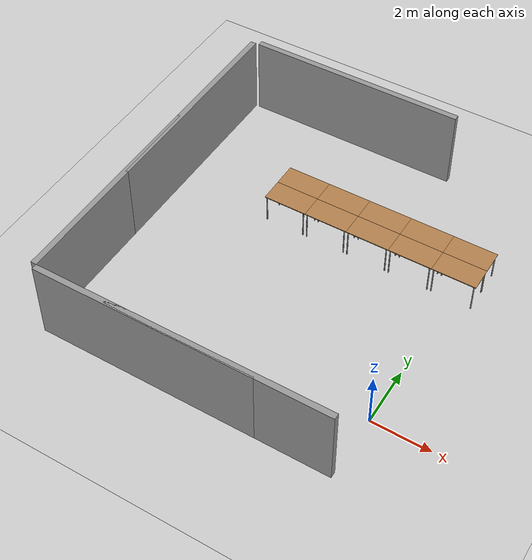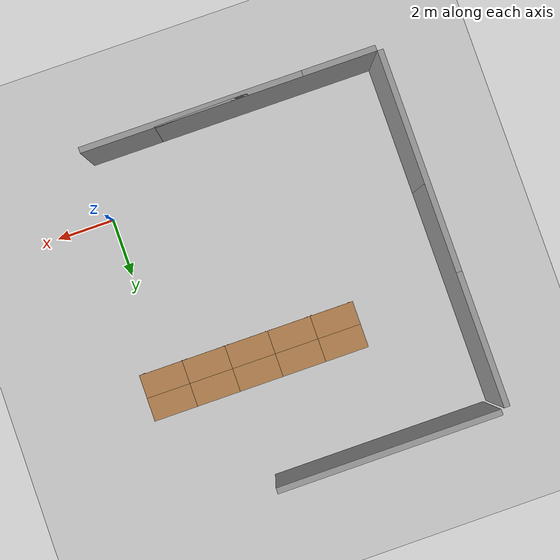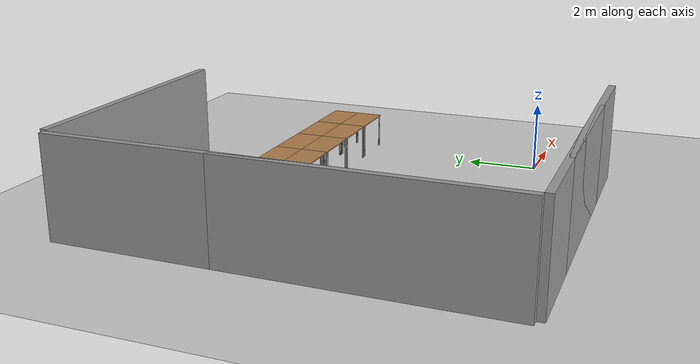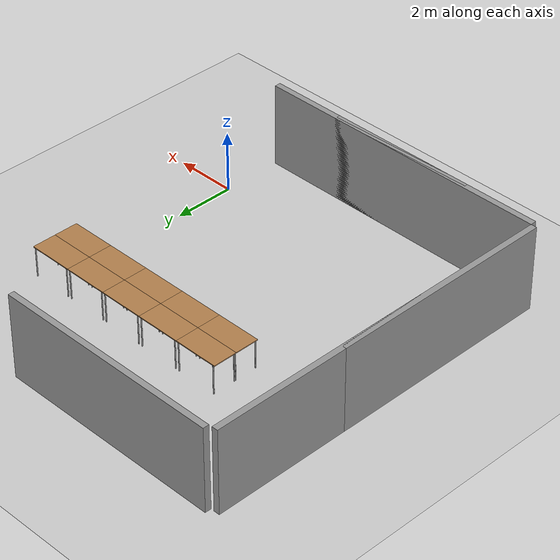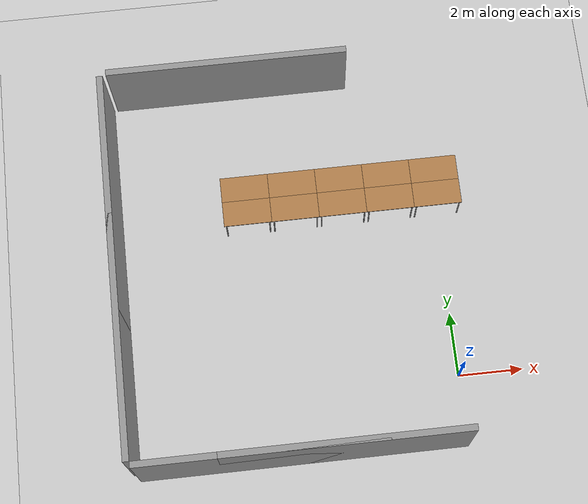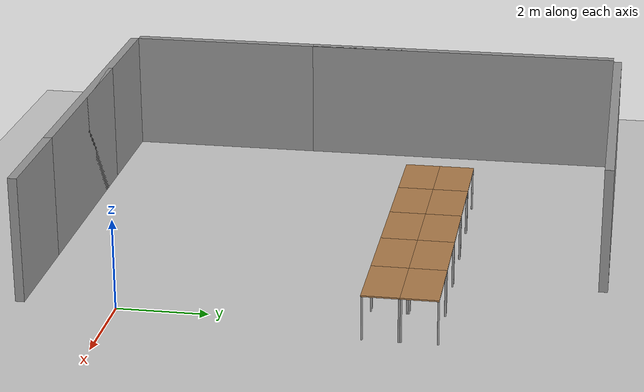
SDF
<sdf version="1.6">
 <world name="default">
  <model name="ground_plane">
   <static>1</static>
   <link name="link">
    <collision name="collision">
     <geometry><plane><normal>0 0 1</normal><size>100 100</size></plane></geometry>
     <surface>
      <contact><collide_bitmask>65535</collide_bitmask></contact>
      <friction><ode><mu>100</mu><mu2>50</mu2></ode></friction>
     </surface>
    </collision>
    <visual name="visual">
     <cast_shadows>0</cast_shadows>
     <geometry><plane><normal>0 0 1</normal><size>100 100</size></plane></geometry>
     <material>
      <script><uri>file://media/materials/scripts/gazebo.material</uri><name>Gazebo/Grey</name></script>
     </material>
    </visual>
   </link>
  </model>
  <model name="table">
   <static>1</static>
   <link name="link">
    <collision name="surface">
     <pose>0 0 1 0 -0 0</pose>
     <geometry><box><size>1.5 0.8 0.03</size></box></geometry>
     <surface><friction><ode><mu>0.6</mu><mu2>0.6</mu2></ode></friction></surface>
    </collision>
    <visual name="visual1">
     <pose>0 0 1 0 -0 0</pose>
     <geometry><box><size>1.5 0.8 0.03</size></box></geometry>
     <material>
      <script><uri>file://media/materials/scripts/gazebo.material</uri><name>Gazebo/Wood</name></script>
     </material>
    </visual>
    <collision name="front_left_leg">
     <pose>0.68 0.38 0.5 0 -0 0</pose>
     <geometry><cylinder><radius>0.02</radius><length>1</length></cylinder></geometry>
    </collision>
    <visual name="front_left_leg">
     <pose>0.68 0.38 0.5 0 -0 0</pose>
     <geometry><cylinder><radius>0.02</radius><length>1</length></cylinder></geometry>
     <material>
      <script><uri>file://media/materials/scripts/gazebo.material</uri><name>Gazebo/Grey</name></script>
     </material>
    </visual>
    <collision name="front_right_leg">
     <pose>0.68 -0.38 0.5 0 -0 0</pose>
     <geometry><cylinder><radius>0.02</radius><length>1</length></cylinder></geometry>
    </collision>
    <visual name="front_right_leg">
     <pose>0.68 -0.38 0.5 0 -0 0</pose>
     <geometry><cylinder><radius>0.02</radius><length>1</length></cylinder></geometry>
     <material>
      <script><uri>file://media/materials/scripts/gazebo.material</uri><name>Gazebo/Grey</name></script>
     </material>
    </visual>
    <collision name="back_right_leg">
     <pose>-0.68 -0.38 0.5 0 -0 0</pose>
     <geometry><cylinder><radius>0.02</radius><length>1</length></cylinder></geometry>
    </collision>
    <visual name="back_right_leg">
     <pose>-0.68 -0.38 0.5 0 -0 0</pose>
     <geometry><cylinder><radius>0.02</radius><length>1</length></cylinder></geometry>
     <material>
      <script><uri>file://media/materials/scripts/gazebo.material</uri><name>Gazebo/Grey</name></script>
     </material>
    </visual>
    <collision name="back_left_leg">
     <pose>-0.68 0.38 0.5 0 -0 0</pose>
     <geometry><cylinder><radius>0.02</radius><length>1</length></cylinder></geometry>
    </collision>
    <visual name="back_left_leg">
     <pose>-0.68 0.38 0.5 0 -0 0</pose>
     <geometry><cylinder><radius>0.02</radius><length>1</length></cylinder></geometry>
     <material>
      <script><uri>file://media/materials/scripts/gazebo.material</uri><name>Gazebo/Grey</name></script>
     </material>
    </visual>
   </link>
   <pose>-3 6.5 0 0 -0 0</pose>
  </model>
  <model name="table_0">
   <static>1</static>
   <link name="link">
    <collision name="surface">
     <pose>0 0 1 0 -0 0</pose>
     <geometry><box><size>1.5 0.8 0.03</size></box></geometry>
     <surface><friction><ode><mu>0.6</mu><mu2>0.6</mu2></ode></friction></surface>
    </collision>
    <visual name="visual1">
     <pose>0 0 1 0 -0 0</pose>
     <geometry><box><size>1.5 0.8 0.03</size></box></geometry>
     <material>
      <script><uri>file://media/materials/scripts/gazebo.material</uri><name>Gazebo/Wood</name></script>
     </material>
    </visual>
    <collision name="front_left_leg">
     <pose>0.68 0.38 0.5 0 -0 0</pose>
     <geometry><cylinder><radius>0.02</radius><length>1</length></cylinder></geometry>
    </collision>
    <visual name="front_left_leg">
     <pose>0.68 0.38 0.5 0 -0 0</pose>
     <geometry><cylinder><radius>0.02</radius><length>1</length></cylinder></geometry>
     <material>
      <script><uri>file://media/materials/scripts/gazebo.material</uri><name>Gazebo/Grey</name></script>
     </material>
    </visual>
    <collision name="front_right_leg">
     <pose>0.68 -0.38 0.5 0 -0 0</pose>
     <geometry><cylinder><radius>0.02</radius><length>1</length></cylinder></geometry>
    </collision>
    <visual name="front_right_leg">
     <pose>0.68 -0.38 0.5 0 -0 0</pose>
     <geometry><cylinder><radius>0.02</radius><length>1</length></cylinder></geometry>
     <material>
      <script><uri>file://media/materials/scripts/gazebo.material</uri><name>Gazebo/Grey</name></script>
     </material>
    </visual>
    <collision name="back_right_leg">
     <pose>-0.68 -0.38 0.5 0 -0 0</pose>
     <geometry><cylinder><radius>0.02</radius><length>1</length></cylinder></geometry>
    </collision>
    <visual name="back_right_leg">
     <pose>-0.68 -0.38 0.5 0 -0 0</pose>
     <geometry><cylinder><radius>0.02</radius><length>1</length></cylinder></geometry>
     <material>
      <script><uri>file://media/materials/scripts/gazebo.material</uri><name>Gazebo/Grey</name></script>
     </material>
    </visual>
    <collision name="back_left_leg">
     <pose>-0.68 0.38 0.5 0 -0 0</pose>
     <geometry><cylinder><radius>0.02</radius><length>1</length></cylinder></geometry>
    </collision>
    <visual name="back_left_leg">
     <pose>-0.68 0.38 0.5 0 -0 0</pose>
     <geometry><cylinder><radius>0.02</radius><length>1</length></cylinder></geometry>
     <material>
      <script><uri>file://media/materials/scripts/gazebo.material</uri><name>Gazebo/Grey</name></script>
     </material>
    </visual>
   </link>
   <pose>-4.5 6.5 0 0 -0 0</pose>
  </model>
  <model name="table_1">
   <static>1</static>
   <link name="link">
    <collision name="surface">
     <pose>0 0 1 0 -0 0</pose>
     <geometry><box><size>1.5 0.8 0.03</size></box></geometry>
     <surface><friction><ode><mu>0.6</mu><mu2>0.6</mu2></ode></friction></surface>
    </collision>
    <visual name="visual1">
     <pose>0 0 1 0 -0 0</pose>
     <geometry><box><size>1.5 0.8 0.03</size></box></geometry>
     <material>
      <script><uri>file://media/materials/scripts/gazebo.material</uri><name>Gazebo/Wood</name></script>
     </material>
    </visual>
    <collision name="front_left_leg">
     <pose>0.68 0.38 0.5 0 -0 0</pose>
     <geometry><cylinder><radius>0.02</radius><length>1</length></cylinder></geometry>
    </collision>
    <visual name="front_left_leg">
     <pose>0.68 0.38 0.5 0 -0 0</pose>
     <geometry><cylinder><radius>0.02</radius><length>1</length></cylinder></geometry>
     <material>
      <script><uri>file://media/materials/scripts/gazebo.material</uri><name>Gazebo/Grey</name></script>
     </material>
    </visual>
    <collision name="front_right_leg">
     <pose>0.68 -0.38 0.5 0 -0 0</pose>
     <geometry><cylinder><radius>0.02</radius><length>1</length></cylinder></geometry>
    </collision>
    <visual name="front_right_leg">
     <pose>0.68 -0.38 0.5 0 -0 0</pose>
     <geometry><cylinder><radius>0.02</radius><length>1</length></cylinder></geometry>
     <material>
      <script><uri>file://media/materials/scripts/gazebo.material</uri><name>Gazebo/Grey</name></script>
     </material>
    </visual>
    <collision name="back_right_leg">
     <pose>-0.68 -0.38 0.5 0 -0 0</pose>
     <geometry><cylinder><radius>0.02</radius><length>1</length></cylinder></geometry>
    </collision>
    <visual name="back_right_leg">
     <pose>-0.68 -0.38 0.5 0 -0 0</pose>
     <geometry><cylinder><radius>0.02</radius><length>1</length></cylinder></geometry>
     <material>
      <script><uri>file://media/materials/scripts/gazebo.material</uri><name>Gazebo/Grey</name></script>
     </material>
    </visual>
    <collision name="back_left_leg">
     <pose>-0.68 0.38 0.5 0 -0 0</pose>
     <geometry><cylinder><radius>0.02</radius><length>1</length></cylinder></geometry>
    </collision>
    <visual name="back_left_leg">
     <pose>-0.68 0.38 0.5 0 -0 0</pose>
     <geometry><cylinder><radius>0.02</radius><length>1</length></cylinder></geometry>
     <material>
      <script><uri>file://media/materials/scripts/gazebo.material</uri><name>Gazebo/Grey</name></script>
     </material>
    </visual>
   </link>
   <pose>-6 6.5 0 0 -0 0</pose>
  </model>
  <model name="table_2">
   <static>1</static>
   <link name="link">
    <collision name="surface">
     <pose>0 0 1 0 -0 0</pose>
     <geometry><box><size>1.5 0.8 0.03</size></box></geometry>
     <surface><friction><ode><mu>0.6</mu><mu2>0.6</mu2></ode></friction></surface>
    </collision>
    <visual name="visual1">
     <pose>0 0 1 0 -0 0</pose>
     <geometry><box><size>1.5 0.8 0.03</size></box></geometry>
     <material>
      <script><uri>file://media/materials/scripts/gazebo.material</uri><name>Gazebo/Wood</name></script>
     </material>
    </visual>
    <collision name="front_left_leg">
     <pose>0.68 0.38 0.5 0 -0 0</pose>
     <geometry><cylinder><radius>0.02</radius><length>1</length></cylinder></geometry>
    </collision>
    <visual name="front_left_leg">
     <pose>0.68 0.38 0.5 0 -0 0</pose>
     <geometry><cylinder><radius>0.02</radius><length>1</length></cylinder></geometry>
     <material>
      <script><uri>file://media/materials/scripts/gazebo.material</uri><name>Gazebo/Grey</name></script>
     </material>
    </visual>
    <collision name="front_right_leg">
     <pose>0.68 -0.38 0.5 0 -0 0</pose>
     <geometry><cylinder><radius>0.02</radius><length>1</length></cylinder></geometry>
    </collision>
    <visual name="front_right_leg">
     <pose>0.68 -0.38 0.5 0 -0 0</pose>
     <geometry><cylinder><radius>0.02</radius><length>1</length></cylinder></geometry>
     <material>
      <script><uri>file://media/materials/scripts/gazebo.material</uri><name>Gazebo/Grey</name></script>
     </material>
    </visual>
    <collision name="back_right_leg">
     <pose>-0.68 -0.38 0.5 0 -0 0</pose>
     <geometry><cylinder><radius>0.02</radius><length>1</length></cylinder></geometry>
    </collision>
    <visual name="back_right_leg">
     <pose>-0.68 -0.38 0.5 0 -0 0</pose>
     <geometry><cylinder><radius>0.02</radius><length>1</length></cylinder></geometry>
     <material>
      <script><uri>file://media/materials/scripts/gazebo.material</uri><name>Gazebo/Grey</name></script>
     </material>
    </visual>
    <collision name="back_left_leg">
     <pose>-0.68 0.38 0.5 0 -0 0</pose>
     <geometry><cylinder><radius>0.02</radius><length>1</length></cylinder></geometry>
    </collision>
    <visual name="back_left_leg">
     <pose>-0.68 0.38 0.5 0 -0 0</pose>
     <geometry><cylinder><radius>0.02</radius><length>1</length></cylinder></geometry>
     <material>
      <script><uri>file://media/materials/scripts/gazebo.material</uri><name>Gazebo/Grey</name></script>
     </material>
    </visual>
   </link>
   <pose>-1.5 6.5 0 0 -0 0</pose>
  </model>
  <model name="table_3">
   <static>1</static>
   <link name="link">
    <collision name="surface">
     <pose>0 0 1 0 -0 0</pose>
     <geometry><box><size>1.5 0.8 0.03</size></box></geometry>
     <surface><friction><ode><mu>0.6</mu><mu2>0.6</mu2></ode></friction></surface>
    </collision>
    <visual name="visual1">
     <pose>0 0 1 0 -0 0</pose>
     <geometry><box><size>1.5 0.8 0.03</size></box></geometry>
     <material>
      <script><uri>file://media/materials/scripts/gazebo.material</uri><name>Gazebo/Wood</name></script>
     </material>
    </visual>
    <collision name="front_left_leg">
     <pose>0.68 0.38 0.5 0 -0 0</pose>
     <geometry><cylinder><radius>0.02</radius><length>1</length></cylinder></geometry>
    </collision>
    <visual name="front_left_leg">
     <pose>0.68 0.38 0.5 0 -0 0</pose>
     <geometry><cylinder><radius>0.02</radius><length>1</length></cylinder></geometry>
     <material>
      <script><uri>file://media/materials/scripts/gazebo.material</uri><name>Gazebo/Grey</name></script>
     </material>
    </visual>
    <collision name="front_right_leg">
     <pose>0.68 -0.38 0.5 0 -0 0</pose>
     <geometry><cylinder><radius>0.02</radius><length>1</length></cylinder></geometry>
    </collision>
    <visual name="front_right_leg">
     <pose>0.68 -0.38 0.5 0 -0 0</pose>
     <geometry><cylinder><radius>0.02</radius><length>1</length></cylinder></geometry>
     <material>
      <script><uri>file://media/materials/scripts/gazebo.material</uri><name>Gazebo/Grey</name></script>
     </material>
    </visual>
    <collision name="back_right_leg">
     <pose>-0.68 -0.38 0.5 0 -0 0</pose>
     <geometry><cylinder><radius>0.02</radius><length>1</length></cylinder></geometry>
    </collision>
    <visual name="back_right_leg">
     <pose>-0.68 -0.38 0.5 0 -0 0</pose>
     <geometry><cylinder><radius>0.02</radius><length>1</length></cylinder></geometry>
     <material>
      <script><uri>file://media/materials/scripts/gazebo.material</uri><name>Gazebo/Grey</name></script>
     </material>
    </visual>
    <collision name="back_left_leg">
     <pose>-0.68 0.38 0.5 0 -0 0</pose>
     <geometry><cylinder><radius>0.02</radius><length>1</length></cylinder></geometry>
    </collision>
    <visual name="back_left_leg">
     <pose>-0.68 0.38 0.5 0 -0 0</pose>
     <geometry><cylinder><radius>0.02</radius><length>1</length></cylinder></geometry>
     <material>
      <script><uri>file://media/materials/scripts/gazebo.material</uri><name>Gazebo/Grey</name></script>
     </material>
    </visual>
   </link>
   <pose>0 6.5 0 0 -0 0</pose>
  </model>
  <model name="table_8">
   <static>1</static>
   <link name="link">
    <collision name="surface">
     <pose>0 0 1 0 -0 0</pose>
     <geometry><box><size>1.5 0.8 0.03</size></box></geometry>
     <surface><friction><ode><mu>0.6</mu><mu2>0.6</mu2></ode></friction></surface>
    </collision>
    <visual name="visual1">
     <pose>0 0 1 0 -0 0</pose>
     <geometry><box><size>1.5 0.8 0.03</size></box></geometry>
     <material>
      <script><uri>file://media/materials/scripts/gazebo.material</uri><name>Gazebo/Wood</name></script>
     </material>
    </visual>
    <collision name="front_left_leg">
     <pose>0.68 0.38 0.5 0 -0 0</pose>
     <geometry><cylinder><radius>0.02</radius><length>1</length></cylinder></geometry>
    </collision>
    <visual name="front_left_leg">
     <pose>0.68 0.38 0.5 0 -0 0</pose>
     <geometry><cylinder><radius>0.02</radius><length>1</length></cylinder></geometry>
     <material>
      <script><uri>file://media/materials/scripts/gazebo.material</uri><name>Gazebo/Grey</name></script>
     </material>
    </visual>
    <collision name="front_right_leg">
     <pose>0.68 -0.38 0.5 0 -0 0</pose>
     <geometry><cylinder><radius>0.02</radius><length>1</length></cylinder></geometry>
    </collision>
    <visual name="front_right_leg">
     <pose>0.68 -0.38 0.5 0 -0 0</pose>
     <geometry><cylinder><radius>0.02</radius><length>1</length></cylinder></geometry>
     <material>
      <script><uri>file://media/materials/scripts/gazebo.material</uri><name>Gazebo/Grey</name></script>
     </material>
    </visual>
    <collision name="back_right_leg">
     <pose>-0.68 -0.38 0.5 0 -0 0</pose>
     <geometry><cylinder><radius>0.02</radius><length>1</length></cylinder></geometry>
    </collision>
    <visual name="back_right_leg">
     <pose>-0.68 -0.38 0.5 0 -0 0</pose>
     <geometry><cylinder><radius>0.02</radius><length>1</length></cylinder></geometry>
     <material>
      <script><uri>file://media/materials/scripts/gazebo.material</uri><name>Gazebo/Grey</name></script>
     </material>
    </visual>
    <collision name="back_left_leg">
     <pose>-0.68 0.38 0.5 0 -0 0</pose>
     <geometry><cylinder><radius>0.02</radius><length>1</length></cylinder></geometry>
    </collision>
    <visual name="back_left_leg">
     <pose>-0.68 0.38 0.5 0 -0 0</pose>
     <geometry><cylinder><radius>0.02</radius><length>1</length></cylinder></geometry>
     <material>
      <script><uri>file://media/materials/scripts/gazebo.material</uri><name>Gazebo/Grey</name></script>
     </material>
    </visual>
   </link>
   <pose>-6 5.7 0 0 -0 0</pose>
  </model>
  <model name="table_9">
   <static>1</static>
   <link name="link">
    <collision name="surface">
     <pose>0 0 1 0 -0 0</pose>
     <geometry><box><size>1.5 0.8 0.03</size></box></geometry>
     <surface><friction><ode><mu>0.6</mu><mu2>0.6</mu2></ode></friction></surface>
    </collision>
    <visual name="visual1">
     <pose>0 0 1 0 -0 0</pose>
     <geometry><box><size>1.5 0.8 0.03</size></box></geometry>
     <material>
      <script><uri>file://media/materials/scripts/gazebo.material</uri><name>Gazebo/Wood</name></script>
     </material>
    </visual>
    <collision name="front_left_leg">
     <pose>0.68 0.38 0.5 0 -0 0</pose>
     <geometry><cylinder><radius>0.02</radius><length>1</length></cylinder></geometry>
    </collision>
    <visual name="front_left_leg">
     <pose>0.68 0.38 0.5 0 -0 0</pose>
     <geometry><cylinder><radius>0.02</radius><length>1</length></cylinder></geometry>
     <material>
      <script><uri>file://media/materials/scripts/gazebo.material</uri><name>Gazebo/Grey</name></script>
     </material>
    </visual>
    <collision name="front_right_leg">
     <pose>0.68 -0.38 0.5 0 -0 0</pose>
     <geometry><cylinder><radius>0.02</radius><length>1</length></cylinder></geometry>
    </collision>
    <visual name="front_right_leg">
     <pose>0.68 -0.38 0.5 0 -0 0</pose>
     <geometry><cylinder><radius>0.02</radius><length>1</length></cylinder></geometry>
     <material>
      <script><uri>file://media/materials/scripts/gazebo.material</uri><name>Gazebo/Grey</name></script>
     </material>
    </visual>
    <collision name="back_right_leg">
     <pose>-0.68 -0.38 0.5 0 -0 0</pose>
     <geometry><cylinder><radius>0.02</radius><length>1</length></cylinder></geometry>
    </collision>
    <visual name="back_right_leg">
     <pose>-0.68 -0.38 0.5 0 -0 0</pose>
     <geometry><cylinder><radius>0.02</radius><length>1</length></cylinder></geometry>
     <material>
      <script><uri>file://media/materials/scripts/gazebo.material</uri><name>Gazebo/Grey</name></script>
     </material>
    </visual>
    <collision name="back_left_leg">
     <pose>-0.68 0.38 0.5 0 -0 0</pose>
     <geometry><cylinder><radius>0.02</radius><length>1</length></cylinder></geometry>
    </collision>
    <visual name="back_left_leg">
     <pose>-0.68 0.38 0.5 0 -0 0</pose>
     <geometry><cylinder><radius>0.02</radius><length>1</length></cylinder></geometry>
     <material>
      <script><uri>file://media/materials/scripts/gazebo.material</uri><name>Gazebo/Grey</name></script>
     </material>
    </visual>
   </link>
   <pose>-4.5 5.7 0 0 -0 0</pose>
  </model>
  <model name="table_10">
   <static>1</static>
   <link name="link">
    <collision name="surface">
     <pose>0 0 1 0 -0 0</pose>
     <geometry><box><size>1.5 0.8 0.03</size></box></geometry>
     <surface><friction><ode><mu>0.6</mu><mu2>0.6</mu2></ode></friction></surface>
    </collision>
    <visual name="visual1">
     <pose>0 0 1 0 -0 0</pose>
     <geometry><box><size>1.5 0.8 0.03</size></box></geometry>
     <material>
      <script><uri>file://media/materials/scripts/gazebo.material</uri><name>Gazebo/Wood</name></script>
     </material>
    </visual>
    <collision name="front_left_leg">
     <pose>0.68 0.38 0.5 0 -0 0</pose>
     <geometry><cylinder><radius>0.02</radius><length>1</length></cylinder></geometry>
    </collision>
    <visual name="front_left_leg">
     <pose>0.68 0.38 0.5 0 -0 0</pose>
     <geometry><cylinder><radius>0.02</radius><length>1</length></cylinder></geometry>
     <material>
      <script><uri>file://media/materials/scripts/gazebo.material</uri><name>Gazebo/Grey</name></script>
     </material>
    </visual>
    <collision name="front_right_leg">
     <pose>0.68 -0.38 0.5 0 -0 0</pose>
     <geometry><cylinder><radius>0.02</radius><length>1</length></cylinder></geometry>
    </collision>
    <visual name="front_right_leg">
     <pose>0.68 -0.38 0.5 0 -0 0</pose>
     <geometry><cylinder><radius>0.02</radius><length>1</length></cylinder></geometry>
     <material>
      <script><uri>file://media/materials/scripts/gazebo.material</uri><name>Gazebo/Grey</name></script>
     </material>
    </visual>
    <collision name="back_right_leg">
     <pose>-0.68 -0.38 0.5 0 -0 0</pose>
     <geometry><cylinder><radius>0.02</radius><length>1</length></cylinder></geometry>
    </collision>
    <visual name="back_right_leg">
     <pose>-0.68 -0.38 0.5 0 -0 0</pose>
     <geometry><cylinder><radius>0.02</radius><length>1</length></cylinder></geometry>
     <material>
      <script><uri>file://media/materials/scripts/gazebo.material</uri><name>Gazebo/Grey</name></script>
     </material>
    </visual>
    <collision name="back_left_leg">
     <pose>-0.68 0.38 0.5 0 -0 0</pose>
     <geometry><cylinder><radius>0.02</radius><length>1</length></cylinder></geometry>
    </collision>
    <visual name="back_left_leg">
     <pose>-0.68 0.38 0.5 0 -0 0</pose>
     <geometry><cylinder><radius>0.02</radius><length>1</length></cylinder></geometry>
     <material>
      <script><uri>file://media/materials/scripts/gazebo.material</uri><name>Gazebo/Grey</name></script>
     </material>
    </visual>
   </link>
   <pose>-3 5.7 0 0 -0 0</pose>
  </model>
  <model name="table_11">
   <static>1</static>
   <link name="link">
    <collision name="surface">
     <pose>0 0 1 0 -0 0</pose>
     <geometry><box><size>1.5 0.8 0.03</size></box></geometry>
     <surface><friction><ode><mu>0.6</mu><mu2>0.6</mu2></ode></friction></surface>
    </collision>
    <visual name="visual1">
     <pose>0 0 1 0 -0 0</pose>
     <geometry><box><size>1.5 0.8 0.03</size></box></geometry>
     <material>
      <script><uri>file://media/materials/scripts/gazebo.material</uri><name>Gazebo/Wood</name></script>
     </material>
    </visual>
    <collision name="front_left_leg">
     <pose>0.68 0.38 0.5 0 -0 0</pose>
     <geometry><cylinder><radius>0.02</radius><length>1</length></cylinder></geometry>
    </collision>
    <visual name="front_left_leg">
     <pose>0.68 0.38 0.5 0 -0 0</pose>
     <geometry><cylinder><radius>0.02</radius><length>1</length></cylinder></geometry>
     <material>
      <script><uri>file://media/materials/scripts/gazebo.material</uri><name>Gazebo/Grey</name></script>
     </material>
    </visual>
    <collision name="front_right_leg">
     <pose>0.68 -0.38 0.5 0 -0 0</pose>
     <geometry><cylinder><radius>0.02</radius><length>1</length></cylinder></geometry>
    </collision>
    <visual name="front_right_leg">
     <pose>0.68 -0.38 0.5 0 -0 0</pose>
     <geometry><cylinder><radius>0.02</radius><length>1</length></cylinder></geometry>
     <material>
      <script><uri>file://media/materials/scripts/gazebo.material</uri><name>Gazebo/Grey</name></script>
     </material>
    </visual>
    <collision name="back_right_leg">
     <pose>-0.68 -0.38 0.5 0 -0 0</pose>
     <geometry><cylinder><radius>0.02</radius><length>1</length></cylinder></geometry>
    </collision>
    <visual name="back_right_leg">
     <pose>-0.68 -0.38 0.5 0 -0 0</pose>
     <geometry><cylinder><radius>0.02</radius><length>1</length></cylinder></geometry>
     <material>
      <script><uri>file://media/materials/scripts/gazebo.material</uri><name>Gazebo/Grey</name></script>
     </material>
    </visual>
    <collision name="back_left_leg">
     <pose>-0.68 0.38 0.5 0 -0 0</pose>
     <geometry><cylinder><radius>0.02</radius><length>1</length></cylinder></geometry>
    </collision>
    <visual name="back_left_leg">
     <pose>-0.68 0.38 0.5 0 -0 0</pose>
     <geometry><cylinder><radius>0.02</radius><length>1</length></cylinder></geometry>
     <material>
      <script><uri>file://media/materials/scripts/gazebo.material</uri><name>Gazebo/Grey</name></script>
     </material>
    </visual>
   </link>
   <pose>-1.5 5.7 0 0 -0 0</pose>
  </model>
  <model name="table_12">
   <static>1</static>
   <link name="link">
    <collision name="surface">
     <pose>0 0 1 0 -0 0</pose>
     <geometry><box><size>1.5 0.8 0.03</size></box></geometry>
     <surface><friction><ode><mu>0.6</mu><mu2>0.6</mu2></ode></friction></surface>
    </collision>
    <visual name="visual1">
     <pose>0 0 1 0 -0 0</pose>
     <geometry><box><size>1.5 0.8 0.03</size></box></geometry>
     <material>
      <script><uri>file://media/materials/scripts/gazebo.material</uri><name>Gazebo/Wood</name></script>
     </material>
    </visual>
    <collision name="front_left_leg">
     <pose>0.68 0.38 0.5 0 -0 0</pose>
     <geometry><cylinder><radius>0.02</radius><length>1</length></cylinder></geometry>
    </collision>
    <visual name="front_left_leg">
     <pose>0.68 0.38 0.5 0 -0 0</pose>
     <geometry><cylinder><radius>0.02</radius><length>1</length></cylinder></geometry>
     <material>
      <script><uri>file://media/materials/scripts/gazebo.material</uri><name>Gazebo/Grey</name></script>
     </material>
    </visual>
    <collision name="front_right_leg">
     <pose>0.68 -0.38 0.5 0 -0 0</pose>
     <geometry><cylinder><radius>0.02</radius><length>1</length></cylinder></geometry>
    </collision>
    <visual name="front_right_leg">
     <pose>0.68 -0.38 0.5 0 -0 0</pose>
     <geometry><cylinder><radius>0.02</radius><length>1</length></cylinder></geometry>
     <material>
      <script><uri>file://media/materials/scripts/gazebo.material</uri><name>Gazebo/Grey</name></script>
     </material>
    </visual>
    <collision name="back_right_leg">
     <pose>-0.68 -0.38 0.5 0 -0 0</pose>
     <geometry><cylinder><radius>0.02</radius><length>1</length></cylinder></geometry>
    </collision>
    <visual name="back_right_leg">
     <pose>-0.68 -0.38 0.5 0 -0 0</pose>
     <geometry><cylinder><radius>0.02</radius><length>1</length></cylinder></geometry>
     <material>
      <script><uri>file://media/materials/scripts/gazebo.material</uri><name>Gazebo/Grey</name></script>
     </material>
    </visual>
    <collision name="back_left_leg">
     <pose>-0.68 0.38 0.5 0 -0 0</pose>
     <geometry><cylinder><radius>0.02</radius><length>1</length></cylinder></geometry>
    </collision>
    <visual name="back_left_leg">
     <pose>-0.68 0.38 0.5 0 -0 0</pose>
     <geometry><cylinder><radius>0.02</radius><length>1</length></cylinder></geometry>
     <material>
      <script><uri>file://media/materials/scripts/gazebo.material</uri><name>Gazebo/Grey</name></script>
     </material>
    </visual>
   </link>
   <pose>0 5.7 0 0 -0 0</pose>
  </model>
  <model name="grey_wall">
   <static>1</static>
   <link name="link">
    <pose>0 0 1.4 0 -0 0</pose>
    <collision name="collision"><geometry><box><size>7.5 0.2 2.8</size></box></geometry></collision>
    <visual name="visual">
     <cast_shadows>0</cast_shadows>
     <geometry><box><size>7.5 0.2 2.8</size></box></geometry>
     <material>
      <script>
       <uri>model://grey_wall/materials/scripts</uri>
       <uri>model://grey_wall/materials/textures</uri>
       <name>vrc/grey_wall</name>
      </script>
     </material>
    </visual>
   </link>
   <pose>-3.75 -2.1 0 0 -0 0</pose>
  </model>
  <model name="grey_wall_1">
   <static>1</static>
   <link name="link">
    <pose>0 0 1.4 0 -0 0</pose>
    <collision name="collision"><geometry><box><size>7.5 0.2 2.8</size></box></geometry></collision>
    <visual name="visual">
     <cast_shadows>0</cast_shadows>
     <geometry><box><size>7.5 0.2 2.8</size></box></geometry>
     <material>
      <script>
       <uri>model://grey_wall/materials/scripts</uri>
       <uri>model://grey_wall/materials/textures</uri>
       <name>vrc/grey_wall</name>
      </script>
     </material>
    </visual>
   </link>
   <pose>-6.25 -2.1 0 0 -0 0</pose>
  </model>
  <model name="grey_wall_3">
   <static>1</static>
   <link name="link">
    <pose>0 0 1.4 0 -0 0</pose>
    <collision name="collision"><geometry><box><size>7.5 0.2 2.8</size></box></geometry></collision>
    <visual name="visual">
     <cast_shadows>0</cast_shadows>
     <geometry><box><size>7.5 0.2 2.8</size></box></geometry>
     <material>
      <script>
       <uri>model://grey_wall/materials/scripts</uri>
       <uri>model://grey_wall/materials/textures</uri>
       <name>vrc/grey_wall</name>
      </script>
     </material>
    </visual>
   </link>
   <pose>-10.1 1.75 0 0 -0 1.5708</pose>
  </model>
  <model name="grey_wall_3_clone">
   <static>1</static>
   <link name="link">
    <pose>0 0 1.4 0 -0 0</pose>
    <collision name="collision"><geometry><box><size>7.5 0.2 2.8</size></box></geometry></collision>
    <visual name="visual">
     <cast_shadows>0</cast_shadows>
     <geometry><box><size>7.5 0.2 2.8</size></box></geometry>
     <material>
      <script>
       <uri>model://grey_wall/materials/scripts</uri>
       <uri>model://grey_wall/materials/textures</uri>
       <name>vrc/grey_wall</name>
      </script>
     </material>
    </visual>
   </link>
   <pose>-10.1 6.25 0 0 -0 1.5708</pose>
  </model>
  <model name="grey_wall_1_clone">
   <static>1</static>
   <link name="link">
    <pose>0 0 1.4 0 -0 0</pose>
    <collision name="collision"><geometry><box><size>7.5 0.2 2.8</size></box></geometry></collision>
    <visual name="visual">
     <cast_shadows>0</cast_shadows>
     <geometry><box><size>7.5 0.2 2.8</size></box></geometry>
     <material>
      <script>
       <uri>model://grey_wall/materials/scripts</uri>
       <uri>model://grey_wall/materials/textures</uri>
       <name>vrc/grey_wall</name>
      </script>
     </material>
    </visual>
   </link>
   <pose>-6.15 10.1 0 0 -0 0</pose>
  </model>
 </world>
</sdf>
